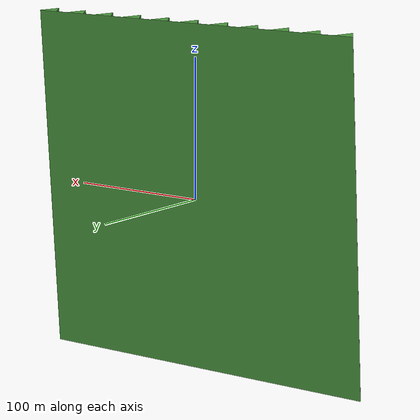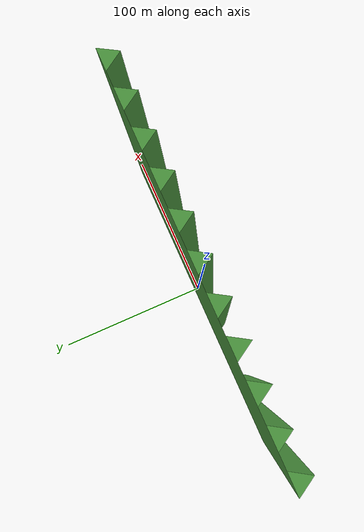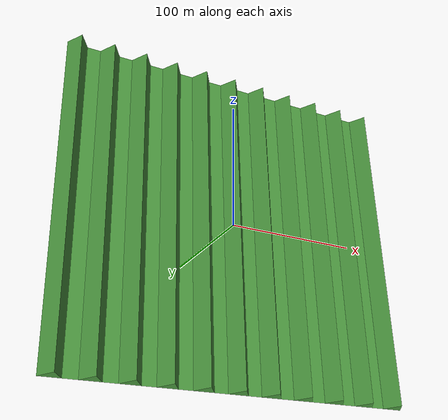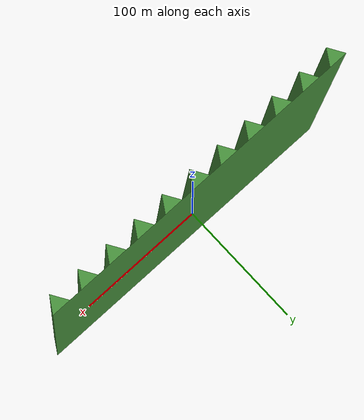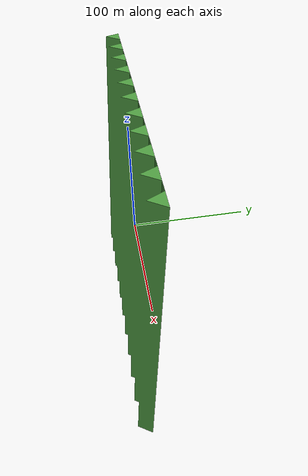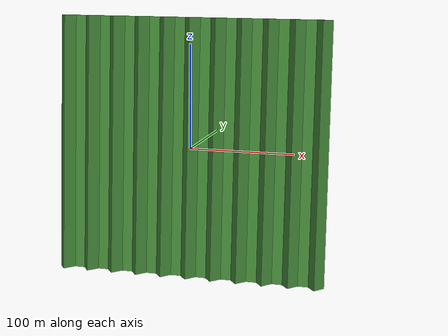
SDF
<?xml version="1.0"?>
<sdf version='1.5'>
  <model name='tri2'>
    <pose>0 0 0 1.507 0 0</pose>
    <static>True</static>
    <link name='base'>
    	<collision name="collision">
        <geometry>
            <mesh><uri>model://tri2/meshes/tri2.obj</uri>
            </mesh>
          </geometry>
      </collision>
        <visual name="visual">
          <geometry>
            <mesh><uri>model://tri2/meshes/tri2.obj</uri>
            </mesh>
          </geometry>
	<material>
            <script>
              <uri>file://media/materials/scripts/gazebo.material</uri>
              <name>Gazebo/Grass</name>
            </script>
          </material>
        </visual>
   </link>
 </model>
</sdf>
